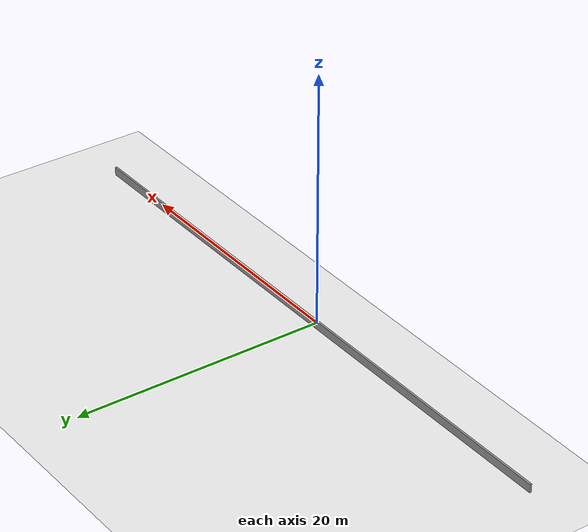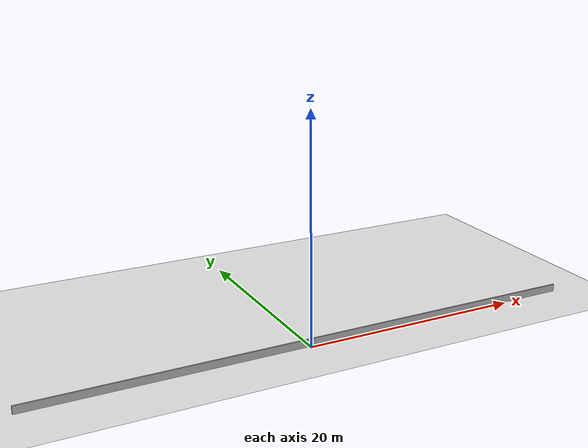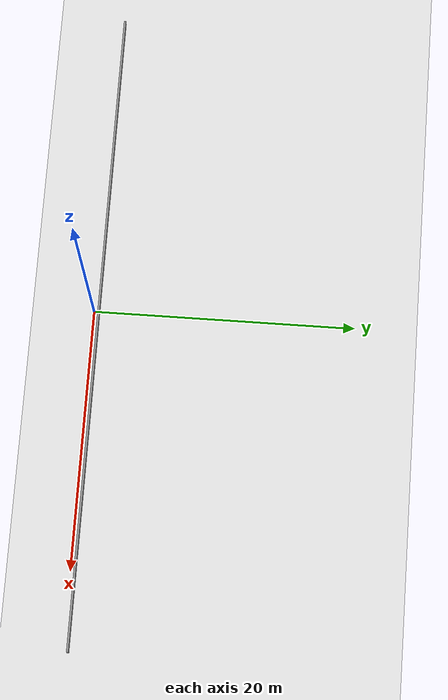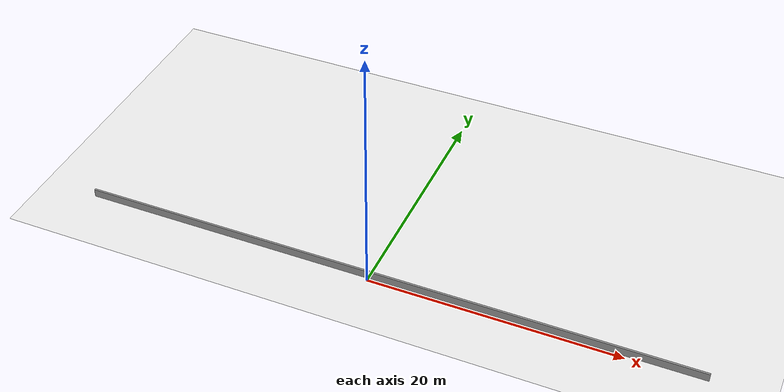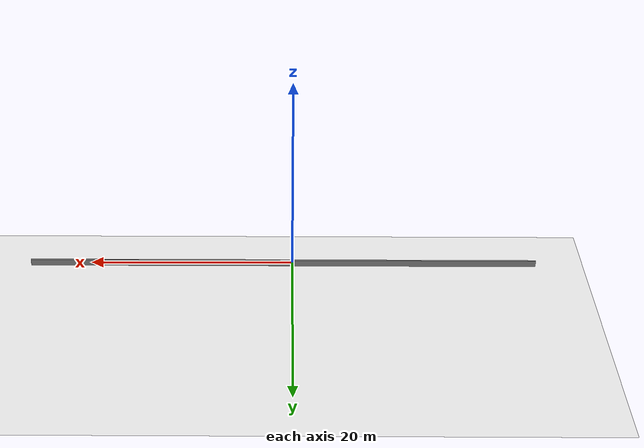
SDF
<?xml version="1.0"?>
<sdf version='1.6'>
  <world name='default'>

    <plugin filename="gz-sim-physics-system" name="gz::sim::systems::Physics"/>
    <plugin filename="gz-sim-user-commands-system" name="gz::sim::systems::UserCommands"/>
    <plugin filename="gz-sim-scene-broadcaster-system" name="gz::sim::systems::SceneBroadcaster"/>
    <plugin filename="gz-sim-sensors-system" name="gz::sim::systems::Sensors">
      <render_engine>ogre2</render_engine>
    </plugin>
    <plugin filename="gz-sim-imu-system" name="gz::sim::systems::Imu"/>

    <light name='Sunlight' type='directional'>
      <cast_shadows>true</cast_shadows>
      <pose>0 0 10 0 0 0</pose>
      <diffuse>0.8 0.8 0.8 1</diffuse>
      <specular>0.1 0.1 0.1 1</specular>
      <attenuation>
        <range>1000</range>
        <constant>0.9</constant>
        <linear>0.01</linear>
        <quadratic>0.001</quadratic>
      </attenuation>
      <direction>-0.5 0.3 -0.9</direction>
    </light>

     <model name="groundPlane">
        <static>true</static>
        <link name="groundPlane_Link">
            <collision name="groundPlane_Collision">
            <geometry>
                <plane>
                <normal>0 0 1</normal>
                <size>100 100</size>
                </plane>
            </geometry>
            </collision>

            <visual name="groundPlane_Visual">
            <cast_shadows>false</cast_shadows>
            <geometry>
                <plane>
                <normal>0 0 1</normal>
                <size>100 100</size>
                </plane>
            </geometry>
            <material>
                <script>
                <uri>file://media/materials/scripts/gazebo.material</uri>
                <name>Gazebo/White</name>
                </script>
            </material>
            </visual>
        </link>
    </model>

    <gravity>0 0 -9.8</gravity>
    <magnetic_field>6e-06 2.3e-05 -4.2e-05</magnetic_field>
    <atmosphere type='adiabatic'/>

    <physics type="ode">
      <real_time_update_rate>1000.0</real_time_update_rate>
      <max_step_size>0.001</max_step_size>
      <real_time_factor>1</real_time_factor>
      <ode>
        <solver>
          <type>quick</type>
          <iters>150</iters>
          <precon_iters>0</precon_iters>
          <sor>1.4</sor>
          <use_dynamic_moi_rescaling>true</use_dynamic_moi_rescaling>
        </solver>
        <constraints>
          <cfm>0.00001</cfm>
          <erp>0.2</erp>
          <contact_max_correcting_vel>2000.0</contact_max_correcting_vel>
          <contact_surface_layer>0.01</contact_surface_layer>
        </constraints>
      </ode>
    </physics>

    <scene>
      <ambient>0.4 0.4 0.4 1</ambient>
      <background>0.7 0.7 0.7 1</background>
      <shadows>true</shadows>
      <grid>true</grid>
    </scene>

    <gui fullscreen='0'>
      <camera name='user_camera'>
        <pose>0 0 5 0 -1.5707 3.14159</pose>
        <view_controller>orbit</view_controller>
        <projection_type>perspective</projection_type>
      </camera>
    </gui>

    <model name='Walls'>
      <static>true</static>
      <pose>1.5 -0.5 0 0 -0 0</pose>
      <link name='Left Wall'>
        <pose>-0.55 0.875 -0.5 0 -0 3.14159</pose>
        <visual name='Left_Wall_Visual'>
          <pose>0 0 0.75 0 -0 0</pose>
          <geometry>
            <box>
              <size>50 0.15 0.75</size>
            </box>
          </geometry>
          <material>
            <script>
              <uri>file://media/materials/scripts/gazebo.material</uri>
              <name>Gazebo/Grey</name>
            </script>
            <double_sided>true</double_sided>
          </material>
          <cast_shadows>true</cast_shadows>
        </visual>
        <collision name='Left_Wall_Collision'>
          <pose>0 0 0.75 0 -0 0</pose>
          <geometry>
            <box>
              <size>50 0.15 0.75</size>
            </box>
          </geometry>
        </collision>
      </link>
    </model>
    </world>
</sdf>
